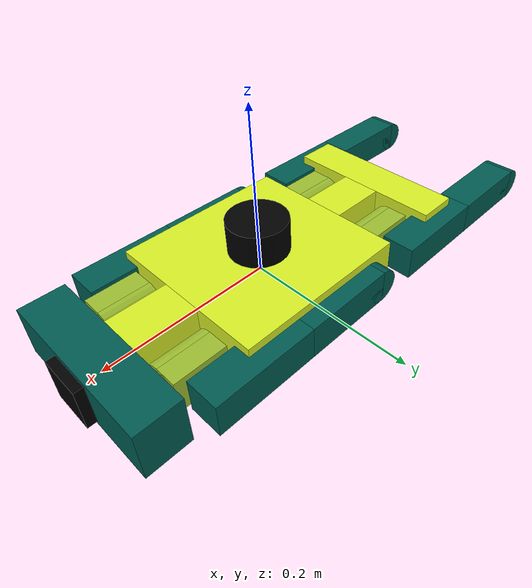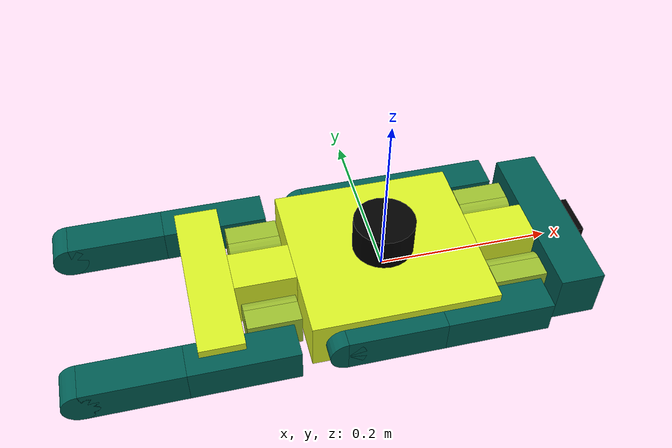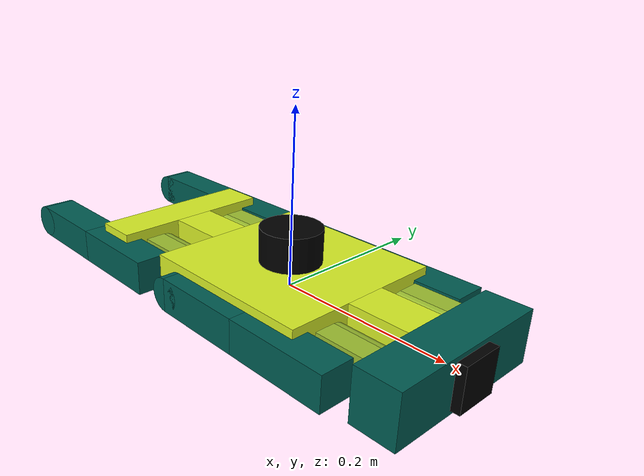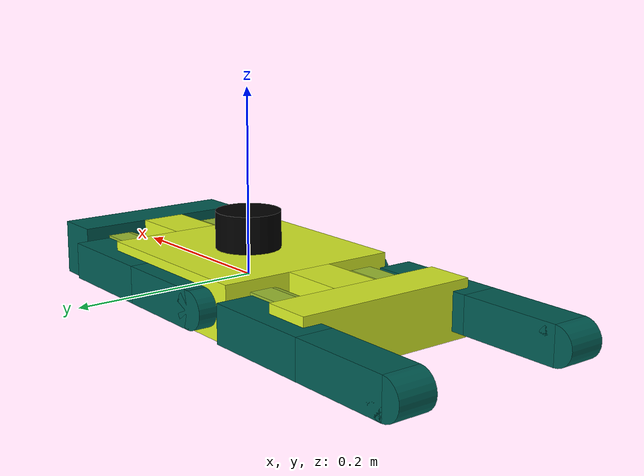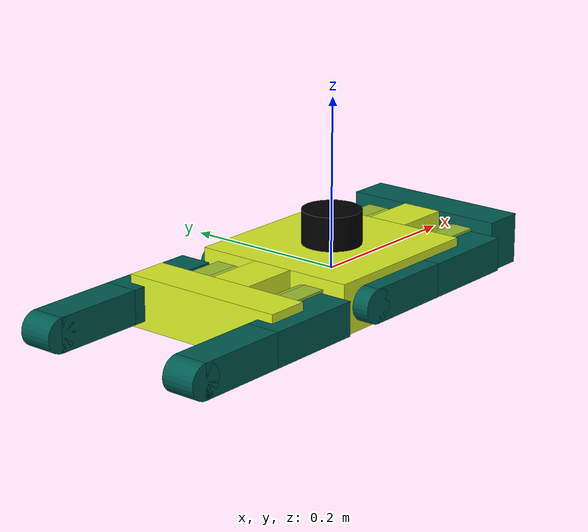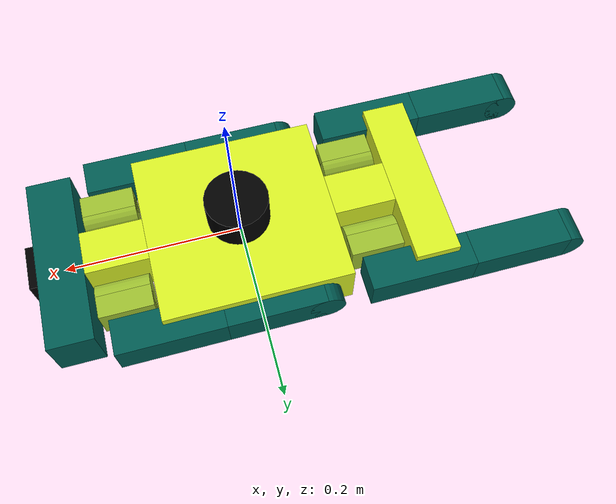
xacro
<?xml version="3.0"?>
<robot name="chilax" xmlns:xacro="http://www.ros.org/wiki/xacro">

    <xacro:include filename="material.urdf.xacro" />
    <xacro:include filename="body.urdf.xacro" />
    <xacro:include filename="leg.urdf.xacro" />
    <xacro:include filename="leg_socket.xacro" />
    <xacro:include filename="lidar.xacro" />
    <xacro:include filename="camera.xacro" />
    <xacro:include filename="gazebo_plugins.xacro" />

</robot>

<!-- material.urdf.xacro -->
<robot xmlns:xacro="http://www.ros.org/wiki/xacro">

    <material name="body">
        <color rgba="0.859 0.949 0.153 0.9" />
    </material>

    <material name="socket">
        <color rgba="0.624 0.757 0.192 0.9" />
    </material>

    <material name="leg">
        <color rgba="0 0.361 0.325 0.9" />
    </material>

    <material name="sensor">
        <color rgba="0 0 0 0.9" />
    </material>

    <xacro:macro name="box_inertia" params="m x y z o_xyz o_rpy">
        <inertial>
            <mass value="${m}" />
            <origin xyz="${o_xyz}" rpy="${o_rpy}" />
            <inertia ixx="${(m/12) * (y*y + z*z)}" ixy="0" ixz="0"
                     iyy="${(m/12) * (x*x + z*z)}" iyz="0"
                     izz="${(m/12) * (y*y + x*x)}" />
        </inertial>
    </xacro:macro>

    <xacro:macro name="cylinder_inertia" params="m r l o_xyz o_rpy">
        <inertial>
            <mass value="${m}" />
            <origin xyz="${o_xyz}" rpy="${o_rpy}" />
            <inertia ixx="${(m/12) * (3*r*r + l*l)}" ixy="0" ixz="0"
                     iyy="${(m/12) * (3*r*r + l*l)}" iyz="0"
                     izz="${(m*r*r)/2}" />
        </inertial>
    </xacro:macro>

</robot>

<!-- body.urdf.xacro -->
<robot xmlns:xacro="http://www.ros.org/wiki/xacro">

    <xacro:property name="front_body_length" value="0.05" />
    <xacro:property name="middle_body_length" value="0.21" />
    <xacro:property name="end_body_length" value="0.05" />

    <xacro:property name="socket_width" value="0.05" />
    <xacro:property name="socket_length" value="0.07" />

    <xacro:property name="body_width" value="0.2" />
    <xacro:property name="body_height" value="0.06" />

    <link name="base_link" />

    <link name="front_body_link">
        <visual>
            <geometry>
                <box size="${front_body_length} ${body_width} ${body_height}" />
            </geometry>
            <origin xyz="0 0 0" rpy="0 0 0" />
            <material name="leg" />
        </visual>
        <collision>
            <geometry>
                <box size="${front_body_length} ${body_width} ${body_height}" />
            </geometry>
            <origin xyz="0 0 0" rpy="0 0 0" />
        </collision>
        <!-- inertial -->
        <xacro:box_inertia m="0.171" x="${front_body_length}" y="${body_width}" z="${body_height}" o_xyz="0 0 0" o_rpy="0 0 0" />
    </link>

    <link name="front_socket_link">
        <visual>
            <geometry>
                <box size="${socket_length} ${socket_width} ${body_height}" />
            </geometry>
            <origin xyz="0 0 0" rpy="0 0 0" />
            <material name="body" />
        </visual>
        <collision>
            <geometry>
                <box size="${socket_length} ${socket_width} ${body_height}" />
            </geometry>
            <origin xyz="0 0 0" rpy="0 0 0" />
        </collision>
        <!-- inertial -->
        <xacro:box_inertia m="0.033" x="${socket_length}" y="${socket_width}" z="${body_height}" o_xyz="0 0 0" o_rpy="0 0 0" />
    </link>

    <link name="middle_body_link">
        <visual>
            <geometry>
                <box size="${middle_body_length} ${body_width} ${body_height}" />
            </geometry>
            <origin xyz="0 0 0" rpy="0 0 0" />
            <material name="body" />
        </visual>
        <collision>
            <geometry>
                <box size="${middle_body_length} ${body_width} ${body_height}" />
            </geometry>
            <origin xyz="0 0 0" rpy="0 0 0" />
        </collision>
        <!-- inertial -->
        <xacro:box_inertia m="0.352" x="${middle_body_length}" y="${body_width}" z="${body_height}" o_xyz="0 0 0" o_rpy="0 0 0" />
    </link>

    <link name="end_socket_link">
        <visual>
            <geometry>
                <box size="${socket_length} ${socket_width} ${body_height}" />
            </geometry>
            <origin xyz="0 0 0" rpy="0 0 0" />
            <material name="body" />
        </visual>
        <collision>
            <geometry>
                <box size="${socket_length} ${socket_width} ${body_height}" />
            </geometry>
            <origin xyz="0 0 0" rpy="0 0 0" />
        </collision>
        <!-- inertial -->
        <xacro:box_inertia m="0.033" x="${socket_length}" y="${socket_width}" z="${body_height}" o_xyz="0 0 0" o_rpy="0 0 0" />
    </link>

    <link name="end_body_link">
        <visual>
            <geometry>
                <box size="${end_body_length} ${body_width} ${body_height}" />
            </geometry>
            <origin xyz="0 0 0" rpy="0 0 0" />
            <material name="body" />
        </visual>
        <collision>
            <geometry>
                <box size="${end_body_length} ${body_width} ${body_height}" />
            </geometry>
            <origin xyz="0 0 0" rpy="0 0 0" />
        </collision>
        <!-- inertial -->
        <xacro:box_inertia m="0.171" x="${end_body_length}" y="${body_width}" z="${body_height}" o_xyz="0 0 0" o_rpy="0 0 0" />
    </link>

    <link name="base_footprint" />

    <joint name="base_footprint_joint" type="fixed">
        <parent link="base_link" />
        <child link="base_footprint" />
        <origin xyz="0 0 0" rpy="0 0 0" />
    </joint>

    <joint name="base_body_joint" type="fixed">
        <parent link="base_link" />
        <child link="middle_body_link" />
        <origin xyz="0 0 0" rpy="0 0 0" />
    </joint>

    <joint name="front_middle_body_joint" type="fixed">
        <parent link="middle_body_link" />
        <child link="front_body_link" />
        <origin xyz="${(middle_body_length + front_body_length) / 2.0 + socket_length} 0 0" rpy="0 0 0" />
    </joint>

    <joint name="front_socket_middle_joint" type="fixed">
        <parent link="middle_body_link" />
        <child link="front_socket_link" />
        <origin xyz="${(middle_body_length + socket_length) / 2.0} 0 0" rpy="0 0 0" />
    </joint>

    <joint name="end_socket_middle_joint" type="fixed">
        <parent link="middle_body_link" />
        <child link="end_socket_link" />
        <origin xyz="${-(middle_body_length + socket_length) / 2.0} 0 0" rpy="0 0 0" />
    </joint>

    <joint name="end_middle_body_joint" type="fixed">
        <parent link="middle_body_link" />
        <child link="end_body_link" />
        <origin xyz="${-((middle_body_length + end_body_length) / 2.0 + socket_length)} 0 0" rpy="0 0 0" />
    </joint>

</robot>

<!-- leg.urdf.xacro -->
<robot xmlns:xacro="http://www.ros.org/wiki/xacro">

    <xacro:property name="thigh_length" value="0.12" />
    <xacro:property name="lower_leg_length" value="0.11" />
    <xacro:property name="leg_width" value="0.04" />
    <xacro:property name="leg_height" value="0.04" />

    <!-- x_axis = 1 means front, -1 means back and y_axis = 1 means left, -1 means right -->
    <xacro:macro name="create_leg" params="prefix">

        <!-- UPPER LEG -->
        <link name="${prefix}_upper_leg_link">
            <visual>
                <geometry>
                    <box size="${thigh_length} ${leg_width} ${leg_height}" />
                </geometry>
                <origin xyz="${-thigh_length / 2.0} 0 0" rpy="0 0 0" />
                <material name="leg" />
            </visual>

            <collision>
                <geometry>
                    <box size="${thigh_length} ${leg_width} ${leg_height}" />
                </geometry>
                <origin xyz="${-thigh_length / 2.0} 0 0" rpy="0 0 0" />
            </collision>

            <xacro:box_inertia m=".083" x="${thigh_length}" y="${leg_width}" z="${leg_height}" o_xyz="${-thigh_length / 2.0} 0 0" o_rpy="0 0 0" />
        </link>

        <!-- LOWER LEG -->
        <link name="${prefix}_lower_leg_link">
            <visual>
                <geometry>
                    <box size="${lower_leg_length} ${leg_width} ${leg_height}" />
                </geometry>
                <origin xyz="${-lower_leg_length / 2.0} 0 0" rpy="0 0 0" />
                <material name="leg" />
            </visual>

            <collision>
                <geometry>
                    <box size="${lower_leg_length} ${leg_width} ${leg_height}" />
                </geometry>
                <origin xyz="${-lower_leg_length / 2.0} 0 0" rpy="0 0 0" />
            </collision>

            <xacro:box_inertia m="0.02" x="${lower_leg_length}" y="${leg_width}" z="${leg_height}" o_xyz="${-lower_leg_length / 2.0} 0 0" o_rpy="0 0 0" />
        </link>

        <!-- FOOT -->
        <link name="${prefix}_feet_link">
            <visual>
                <geometry>
                    <cylinder radius="${leg_width / 2.0}" length="${leg_width}" />
                </geometry>
                <origin xyz="0 0 0" rpy="${pi / 2.0} 0 0" />
                <material name="leg" />
            </visual>

            <collision>
                <geometry>
                    <cylinder radius="${leg_width / 2.0}" length="${leg_width}" />
                </geometry>
                <origin xyz="0 0 0" rpy="${pi / 2.0} 0 0" />
            </collision>

            <xacro:cylinder_inertia m="0.006" r="${leg_width / 2.0}" l="${leg_width}" o_xyz="0 0 0" o_rpy="${pi / 2.0} 0 0" />
        </link>

        <joint name="${prefix}_leg_joint" type="revolute">
            <parent link="${prefix}_upper_leg_link" />
            <child link="${prefix}_lower_leg_link" />
            <origin xyz="${-thigh_length} 0 0" rpy="0 0 0" />
            <axis xyz="0 -1 0" />
            <limit lower="0" upper="${pi}" effort="3.0" velocity="15.0" />
            <dynamics damping="0.12" friction="0.05"/>
        </joint>

        <joint name="${prefix}_lower_leg_feet_joint" type="fixed">
            <parent link="${prefix}_lower_leg_link" />
            <child link="${prefix}_feet_link" />
            <origin xyz="${-lower_leg_length} 0 0" rpy="0 0 0" />
        </joint>

    </xacro:macro>

    <xacro:create_leg prefix="front_left" />
    <xacro:create_leg prefix="front_right" />
    <xacro:create_leg prefix="back_left" />
    <xacro:create_leg prefix="back_right" />

</robot>

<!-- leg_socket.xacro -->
<robot xmlns:xacro="http://www.ros.org/wiki/xacro">

    <xacro:property name="socket_inner_length" value="0.06" />
    <xacro:property name="socket_inner_width" value="0.025" />
    <xacro:property name="socket_inner_height" value="0.04" />

    <!-- x_axis = 1 means front, -1 means back and y_axis = 1 means left, -1 means right -->
    <xacro:macro name="create_socket" params="prefix o_y x_axis y_axis">
        <link name="${prefix}_socket_start">
            <visual>
                <geometry>
                    <box size="${socket_inner_length} ${socket_inner_width} ${socket_inner_height}" />
                </geometry>
                <origin xyz="0 ${o_y} 0" rpy="0 0 0" />
                <material name="socket" />
            </visual>
            <collision>
                <geometry>
                    <box size="${socket_inner_length} ${socket_inner_width} ${socket_inner_height}" />
                </geometry>
                <origin xyz="0 ${o_y} 0" rpy="0 0 0" />
            </collision>
            <!-- inertial -->
            <xacro:box_inertia m="0.0425" x="${socket_inner_length}" y="${socket_inner_width}" z="${socket_inner_height}" o_xyz="0 ${o_y} 0" o_rpy="0 0 0" />
        </link>

        <link name="${prefix}_socket_end">
            <visual>
                <geometry>
                    <cylinder radius="${socket_inner_height / 2.0}" length="${socket_inner_length}" />
                </geometry>
                <origin xyz="0 0 0" rpy="0 ${pi / 2.0} 0" />
                <material name="socket" />
            </visual>
            <collision>
                <geometry>
                    <cylinder radius="${socket_inner_height / 2.0}" length="${socket_inner_length}" />
                </geometry>
                <origin xyz="0 0 0" rpy="0 ${pi / 2.0} 0" />
            </collision>
            <!-- inertial -->
            <xacro:cylinder_inertia m="0.0425" r="${socket_inner_height / 2.0}" l="${socket_inner_length}" o_xyz="0 0 0" o_rpy="0 ${pi / 2.0} 0" />
        </link>

        <joint name="body_${prefix}_socket_joint" type="revolute">
            <parent link="middle_body_link" />
            <child link="${prefix}_socket_start" />
            <origin xyz="${x_axis * (middle_body_length + socket_length) / 2.0} ${y_axis * socket_width} 0" rpy="0 0 0" />
            <limit lower="0" upper="${pi}" effort="3.0" velocity="15.0" />
            <axis xyz="1 0 0" />
            <dynamics damping="0.12" friction="0.05"/>
        </joint>

        <joint name="${prefix}_socket_joint" type="fixed">
            <parent link="${prefix}_socket_start" />
            <child link="${prefix}_socket_end" />
            <origin xyz="0 0 0" rpy="0 0 0" />
        </joint>

        <joint name="${prefix}_leg_socket_joint" type="revolute">
            <parent link="${prefix}_socket_start" />
            <child link="${prefix}_upper_leg_link" />
            <origin xyz="${socket_inner_length / 3.0} ${y_axis * (0.005 + socket_inner_width + leg_width / 2.0)} 0" rpy="0 0 0" />
            <axis xyz="0 -1 0" />
            <limit lower="0" upper="${pi}" effort="3.0" velocity="15.0" />
            <dynamics damping="0.12" friction="0.05"/>
        </joint>

    </xacro:macro>

    <xacro:create_socket prefix="front_left" o_y="${socket_inner_width / 2.0}" x_axis="1" y_axis="1" />
    <xacro:create_socket prefix="front_right" o_y="${-socket_inner_width / 2.0}" x_axis="1" y_axis="-1" />
    <xacro:create_socket prefix="back_left" o_y="${socket_inner_width / 2.0}" x_axis="-1" y_axis="1" />
    <xacro:create_socket prefix="back_right" o_y="${-socket_inner_width / 2.0}" x_axis="-1" y_axis="-1" />

</robot>

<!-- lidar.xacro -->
<robot xmlns:xacro="http://www.ros.org/wiki/xacro">

    <link name="lidar_link">
        <visual>
            <geometry>
                <cylinder radius="0.035" length="0.04" />
            </geometry>
            <origin xyz="0 0 0" rpy="0 0 0" />
            <material name="sensor" />
        </visual>
        <collision>
            <geometry>
                <cylinder radius="0.05" length="0.04" />
            </geometry>
            <origin xyz="0 0 0" rpy="0 0 0" />
        </collision>
        <xacro:cylinder_inertia m="0.17" r="0.035" l="0.04" o_xyz="0 0 0" o_rpy="0 0 0" />
    </link>

    <joint name="body_lidar_joint" type="fixed">
        <parent link="middle_body_link" />
        <child link="lidar_link" />
        <origin xyz="0 0 ${body_height / 2.0 + 0.02}" rpy="0 0 0" />
    </joint>

    <gazebo reference="lidar_link">
        <sensor name="lidar" type="gpu_lidar">
            <pose>0 0 0 0 0 0</pose>
            <update_rate>10</update_rate>
            <lidar>
            <scan>
                <horizontal>
                <samples>720</samples>
                <resolution>1</resolution>
                <min_angle>-3.14</min_angle>
                <max_angle>3.14</max_angle>
                </horizontal>
            </scan>
            <range>
                <min>0.3</min>
                <max>12</max>
                <resolution>0.01</resolution>
            </range>
            </lidar>
            <always_on>true</always_on>
            <visualize>true</visualize>

            <gz_frame_id>lidar_link</gz_frame_id>
        </sensor>
    </gazebo>

</robot>

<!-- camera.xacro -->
<robot xmlns:xacro="http://www.ros.org/wiki/xacro">

    <link name="camera_link">
        <visual>
            <geometry>
                <box size="0.01 0.05 0.05"/>
            </geometry>
            <origin xyz="0 0 0" rpy="0 0 0" />
            <material name="sensor"/>
        </visual>
        <collision>
            <geometry>
                <box size="0.01 0.05 0.05"/>
            </geometry>
            <origin xyz="0 0 0" rpy="0 0 0" />
        </collision>
        <xacro:box_inertia m="0.01" x="0.01" y="0.05" z="0.05" o_xyz="0 0 0" o_rpy="0 0 0" />
    </link>

    <joint name="body_camera_joint" type="fixed">
        <parent link="front_body_link"/>
        <child link="camera_link"/>
        <origin xyz="${front_body_length / 2.0 + 0.005} 0 0" rpy="0 0 0"/>
    </joint>

    <gazebo reference="camera_link">
        <sensor name="camera_sensor" type="camera">
            <always_on>true</always_on>
            <update_rate>30</update_rate>
            <visualize>true</visualize>

            <camera>
            <horizontal_fov>1.047</horizontal_fov>
            <image>
                <width>640</width>
                <height>480</height>
                <format>R8G8B8</format>
            </image>
            <clip>
                <near>0.1</near>
                <far>100</far>
            </clip>
            </camera>

            <gz_frame_id>camera_link</gz_frame_id>
            <topic>/camera/image_raw</topic>
        </sensor>
    </gazebo>

</robot>
